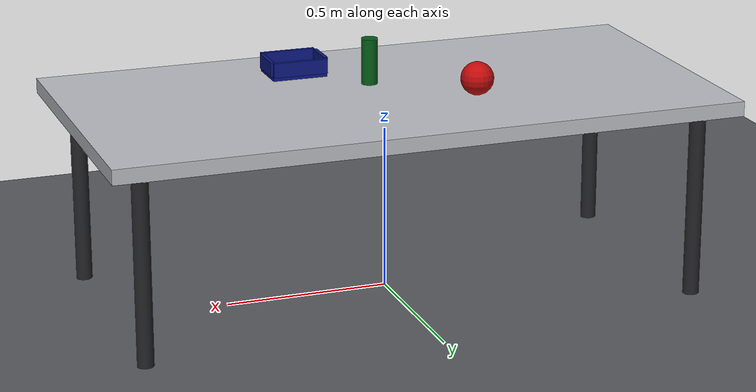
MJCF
<mujoco model="bottle_tray_tabletop">
  <compiler angle="radian" autolimits="true"/>
  <option timestep="0.002" gravity="0 0 -9.81"/>
  <visual>
    <headlight ambient="0.45 0.45 0.5" diffuse="0.65 0.65 0.7" specular="0.15 0.15 0.15"/>
  </visual>
  <statistic center="0.1 0 0.55" meansize="0.04" extent="2.66"/>
  <asset>
    <texture name="table_tex" type="2d" builtin="checker" rgb1="0.58 0.59 0.62" rgb2="0.88 0.88 0.9" width="640" height="640"/>
    <material name="table_mat" texture="table_tex" texrepeat="10 5" reflectance="0.06" shininess="0.3"/>
    <texture name="floor_tex" type="2d" builtin="checker" rgb1="0.30 0.31 0.33" rgb2="0.38 0.39 0.41" width="512" height="512"/>
    <material name="floor_mat" texture="floor_tex" texrepeat="6 6" reflectance="0.10" shininess="0.4"/>
  </asset>
  <worldbody>
    <light name="key_light" directional="true" pos="0.2 -1.2 2.4" dir="0.05 0.4 -0.9" diffuse="0.72 0.72 0.72"/>
    <light name="fill_light" directional="true" pos="-1.5 -1.5 1.8" dir="0.6 0.6 -0.5" diffuse="0.35 0.36 0.4"/>
    <geom name="room_floor" type="plane" size="5 5 0.05" pos="0 0 0.0" material="floor_mat"/>
    <!-- table: top surface at 0.620 m, light checkerboard -->
    <geom name="table_top" type="box" pos="0 0 0.5975" size="0.9500 0.4750 0.0225" material="table_mat" friction="0.6 0.008 0.0002"/>
    <geom name="table_leg_0" type="cylinder" pos="-0.8500 -0.3750 0.2875" size="0.0250 0.2875" rgba="0.14 0.14 0.15 1"/>
    <geom name="table_leg_1" type="cylinder" pos="0.8500 -0.3750 0.2875" size="0.0250 0.2875" rgba="0.14 0.14 0.15 1"/>
    <geom name="table_leg_2" type="cylinder" pos="-0.8500 0.3750 0.2875" size="0.0250 0.2875" rgba="0.14 0.14 0.15 1"/>
    <geom name="table_leg_3" type="cylinder" pos="0.8500 0.3750 0.2875" size="0.0250 0.2875" rgba="0.14 0.14 0.15 1"/>
    <geom name="RedSphere" type="sphere" pos="-0.240000 0.140000 0.670000" size="0.050000" rgba="0.760 0.040 0.040 1.0"/>
    <!-- Tray: shallow tray, opening upward -->
    <body name="Tray" pos="0.200000 -0.260000 0.620000">
      <geom name="Tray_wall0" type="box" pos="0.000000 -0.065000 0.034500" size="0.085000 0.006000 0.022500" rgba="0.040 0.090 0.500 1"/>
      <geom name="Tray_wall1" type="box" pos="0.000000 0.065000 0.034500" size="0.085000 0.006000 0.022500" rgba="0.040 0.090 0.500 1"/>
      <geom name="Tray_wall2" type="box" pos="-0.085000 0.000000 0.034500" size="0.006000 0.053000 0.022500" rgba="0.040 0.090 0.500 1"/>
      <geom name="Tray_wall3" type="box" pos="0.085000 0.000000 0.034500" size="0.006000 0.053000 0.022500" rgba="0.040 0.090 0.500 1"/>
      <geom name="Tray_bottom" type="box" pos="0.000000 0.000000 0.006000" size="0.085000 0.065000 0.006000" rgba="0.040 0.090 0.500 1"/>
      <site name="goal_zone" type="box" pos="0.000000 0.000000 0.082000" size="0.0480 0.0280 0.0300" rgba="0.15 1.0 0.3 0.08" group="3"/>
    </body>
    <body name="GreenBottle" pos="0.020000 -0.080000 0.690500">
      <freejoint name="GreenBottle_free"/>
      <geom name="GreenBottle" type="cylinder" size="0.025000 0.070000" mass="0.150" rgba="0.020 0.360 0.100 1.0" friction="0.7 0.01 0.0005" condim="4"/>
      <!-- dims: 0.025000 0.070000 | semantic: grasp_target -->
    </body>
    <camera name="agentview" mode="fixed" pos="-0.7800 -0.2800 1.0800" xyaxes="0.110432 -0.993884 0.000000 0.434365 0.048263 0.899443" fovy="45"/>
  </worldbody>
  <actuator/>
</mujoco>
